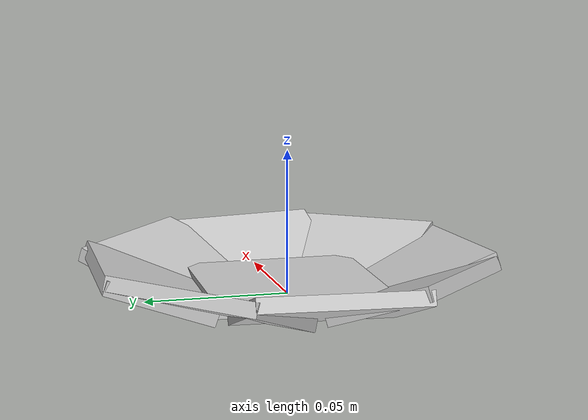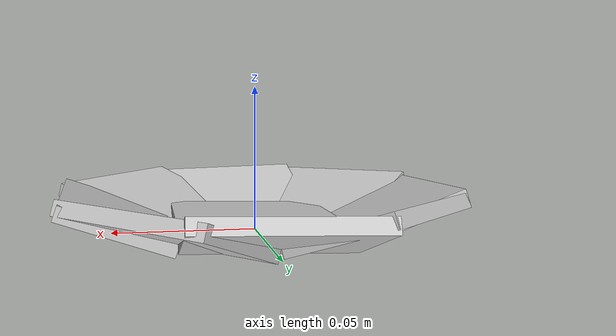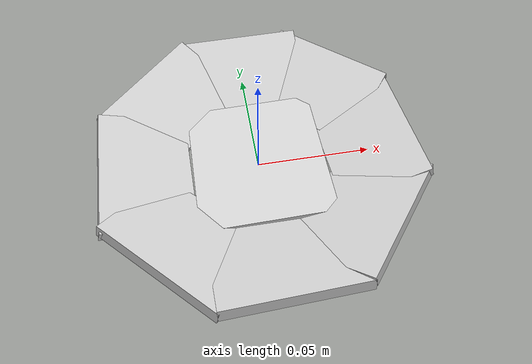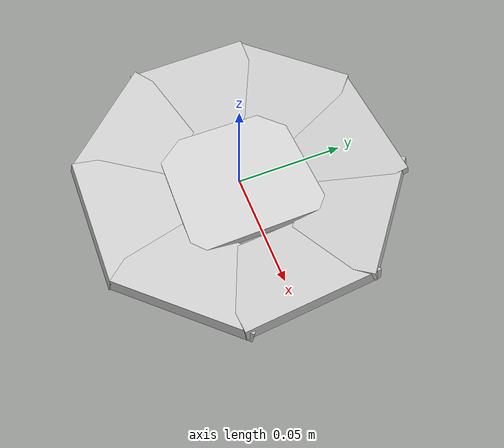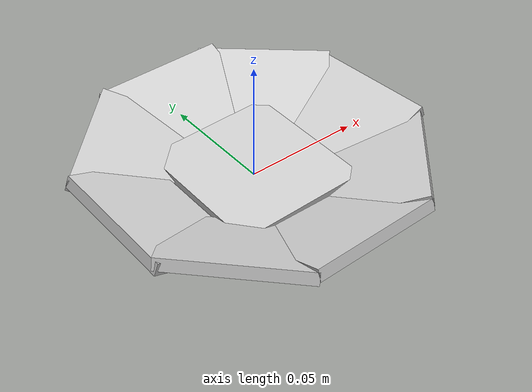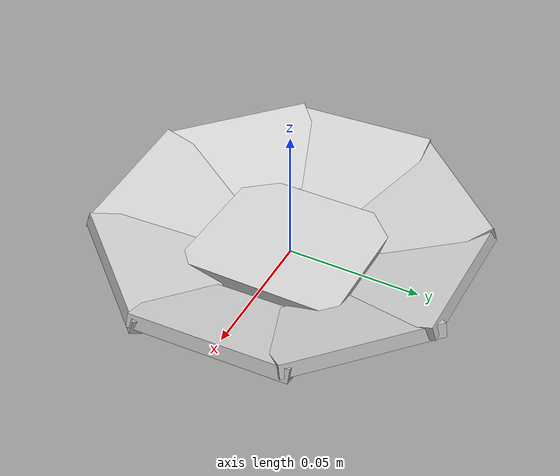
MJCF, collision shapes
<mujoco model="model">
  <asset>
  <texture file="texture.png" name="tex-model" type="2d" />
  <material name="model" reflectance="0.5" texrepeat="1 1" texture="tex-model" texuniform="false" />
  <mesh file="visual/model_vis.msh" name="model_vis" scale="0.5 0.5 0.5" /></asset>
  <worldbody>
    <body>
      <body name="object">
      <site name="contain_region" type="box" pos="0 0 0.018" quat="1 0 0 0" size="0.045 0.045 0.016" rgba="0 1 0 0"/>
      <geom solimp="0.998 0.998 0.001" solref="0.001 1" density="100" friction="0.95 0.3 0.1" type="mesh" mesh="model_vis" conaffinity="0" contype="0" group="1" material="model" /><geom solimp="0.998 0.998 0.001" solref="0.001 1" density="100" friction="0.95 0.3 0.1" type="box" pos="0.00000 -0.00000 0.00313" quat="0.49356 0.49356 -0.50636 0.50636" size="0.00222 0.02851 0.03057" group="0" rgba="0.8 0.8 0.8 0.3" /><geom solimp="0.998 0.998 0.001" solref="0.001 1" density="100" friction="0.95 0.3 0.1" type="box" pos="-0.00000 0.04828 0.00696" quat="0.70574 0.12139 0.68790 0.11832" size="0.00254 0.01913 0.02851" group="0" rgba="0.8 0.8 0.8 0.3" /><geom solimp="0.998 0.998 0.001" solref="0.001 1" density="100" friction="0.95 0.3 0.1" type="box" pos="-0.00000 0.04828 0.00696" quat="0.70574 0.12139 0.68790 0.11832" size="0.00254 0.01913 0.02851" group="0" rgba="0.8 0.8 0.8 0.3" /><geom solimp="0.998 0.998 0.001" solref="0.001 1" density="100" friction="0.95 0.3 0.1" type="box" pos="0.03237 0.03583 0.00696" quat="0.70114 0.36036 0.59839 -0.14306" size="0.00254 0.01913 0.02851" group="0" rgba="0.8 0.8 0.8 0.3" /><geom solimp="0.998 0.998 0.001" solref="0.001 1" density="100" friction="0.95 0.3 0.1" type="box" pos="0.04818 0.00314 0.00696" quat="0.59590 0.55892 0.41899 -0.39618" size="0.00254 0.01913 0.02851" group="0" rgba="0.8 0.8 0.8 0.3" /><geom solimp="0.998 0.998 0.001" solref="0.001 1" density="100" friction="0.95 0.3 0.1" type="box" pos="0.03658 -0.03152 0.00696" quat="0.67591 -0.40164 0.59224 0.17629" size="0.00254 0.01913 0.02851" group="0" rgba="0.8 0.8 0.8 0.3" /><geom solimp="0.998 0.998 0.001" solref="0.001 1" density="100" friction="0.95 0.3 0.1" type="box" pos="0.00230 -0.04823 0.00696" quat="0.13507 0.69059 -0.10500 -0.70272" size="0.00254 0.01913 0.02851" group="0" rgba="0.8 0.8 0.8 0.3" /><geom solimp="0.998 0.998 0.001" solref="0.001 1" density="100" friction="0.95 0.3 0.1" type="box" pos="-0.03334 -0.03492 0.00696" quat="0.59339 0.15267 0.69911 -0.36855" size="0.00254 0.01913 0.02851" group="0" rgba="0.8 0.8 0.8 0.3" /><geom solimp="0.998 0.998 0.001" solref="0.001 1" density="100" friction="0.95 0.3 0.1" type="box" pos="-0.04827 -0.00130 0.00696" quat="0.40827 0.40746 0.58825 -0.56679" size="0.00254 0.01913 0.02851" group="0" rgba="0.8 0.8 0.8 0.3" /><geom solimp="0.998 0.998 0.001" solref="0.001 1" density="100" friction="0.95 0.3 0.1" type="box" pos="-0.03442 0.03386 0.00696" quat="0.60516 -0.15392 0.68136 0.38190" size="0.00254 0.01913 0.02851" group="0" rgba="0.8 0.8 0.8 0.3" /></body>
      <site rgba="0 0 0 0" size="0.005" pos="0 0 -0.06" name="bottom_site" />
      <site rgba="0 0 0 0" size="0.005" pos="0 0 0.04" name="top_site" />
      <site rgba="0 0 0 0" size="0.005" pos="0.025 0.025 0" name="horizontal_radius_site" />
    </body>
  </worldbody>
</mujoco>
